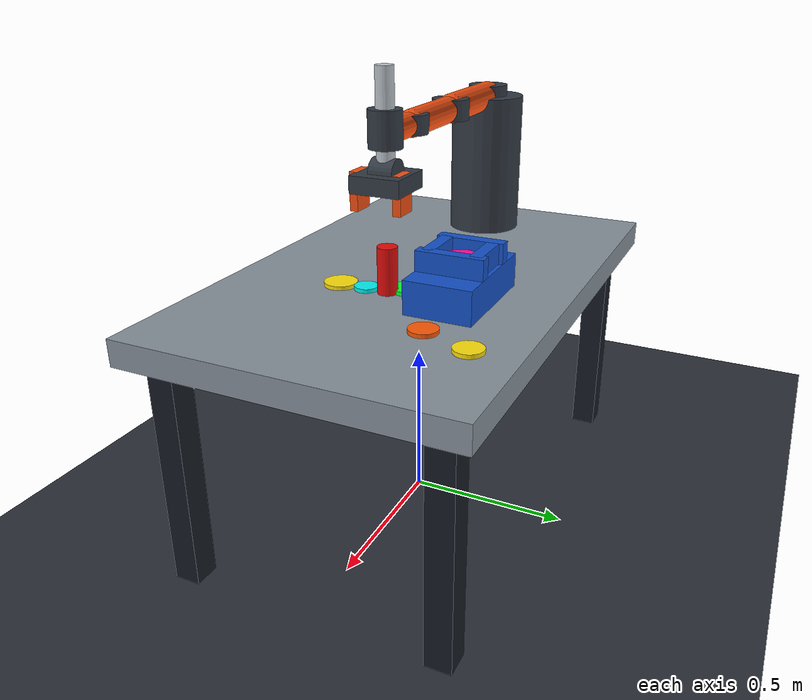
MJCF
<mujoco model="robot_peg_insertion_assembly">
  <compiler angle="radian" autolimits="true"/>
  <option timestep="0.002" gravity="0 0 -9.81" integrator="implicitfast" solver="Newton" cone="elliptic"/>
  <size nconmax="500" njmax="1200"/>
  <statistic center="0 0.08 0.9" extent="1.35"/>
  <visual>
    <global offwidth="640" offheight="480"/>
    <quality shadowsize="2048"/>
    <map znear="0.01" zfar="8"/>
    <headlight ambient="0.30 0.31 0.34" diffuse="0.72 0.74 0.76" specular="0.18 0.18 0.20"/>
  </visual>

  <asset>
    <texture name="ground_tex" type="2d" builtin="checker" rgb1="0.12 0.14 0.17" rgb2="0.22 0.24 0.27" width="512" height="512"/>
    <material name="ground_mat" texture="ground_tex" texrepeat="5 5" reflectance="0.08"/>
    <material name="bench_mat" rgba="0.53 0.57 0.61 1" specular="0.18" roughness="0.62"/>
    <material name="frame_mat" rgba="0.08 0.10 0.13 1" specular="0.20" roughness="0.48"/>
    <material name="arm_mat" rgba="0.95 0.31 0.07 1" specular="0.35" roughness="0.30"/>
    <material name="arm_dark_mat" rgba="0.20 0.23 0.27 1" specular="0.25" roughness="0.42"/>
    <material name="arm_steel_mat" rgba="0.74 0.77 0.80 1" specular="0.60" roughness="0.18"/>
    <material name="peg_mat" rgba="0.88 0.05 0.04 1" specular="0.34" roughness="0.28"/>
    <material name="fixture_mat" rgba="0.08 0.32 0.78 1" specular="0.24" roughness="0.42"/>
    <material name="socket_mat" rgba="0.03 0.12 0.25 1" specular="0.26" roughness="0.30"/>
    <material name="marker_yellow" rgba="1 0.88 0.04 1" emission="0.35"/>
    <material name="marker_cyan" rgba="0.02 0.95 0.95 1" emission="0.35"/>
    <material name="marker_green" rgba="0.05 1 0.18 1" emission="0.35"/>
    <material name="marker_magenta" rgba="1 0.05 0.65 1" emission="0.35"/>
    <material name="marker_orange" rgba="1 0.35 0.02 1" emission="0.35"/>
  </asset>

  <default>
    <geom friction="0.72 0.01 0.002" condim="6" solref="0.008 1" solimp="0.90 0.95 0.001"/>
    <default class="world_part">
      <geom contype="1" conaffinity="7"/>
    </default>
    <default class="robot_part">
      <geom contype="2" conaffinity="7"/>
    </default>
    <default class="payload_part">
      <geom contype="4" conaffinity="7"/>
    </default>
  </default>

  <worldbody>
    <light name="key_light" pos="-1.2 -1.1 2.8" dir="0.35 0.32 -1" directional="true" castshadow="true"/>
    <light name="fill_light" pos="1.4 0.3 2.0" dir="-0.7 -0.2 -1" directional="true" diffuse="0.42 0.44 0.48" specular="0.08 0.08 0.08"/>
    <camera name="assembly_camera" pos="1.4883 -1.7737 2.0586" quat="0.8258179558 0.4483825660 0.1631979076 0.3005731548" fovy="45"/>

    <geom name="ground_geom" class="world_part" type="plane" size="3 3 0.1" material="ground_mat"/>
    <body name="workbench" pos="0 0 0.74">
      <geom name="workbench_top_geom" class="world_part" type="box" size="0.80 0.50 0.04" material="bench_mat" friction="0.90 0.01 0.001"/>
      <geom name="workbench_leg_fl" class="world_part" type="box" pos="-0.70 -0.40 -0.38" size="0.04 0.04 0.38" material="frame_mat"/>
      <geom name="workbench_leg_fr" class="world_part" type="box" pos="0.70 -0.40 -0.38" size="0.04 0.04 0.38" material="frame_mat"/>
      <geom name="workbench_leg_bl" class="world_part" type="box" pos="-0.70 0.40 -0.38" size="0.04 0.04 0.38" material="frame_mat"/>
      <geom name="workbench_leg_br" class="world_part" type="box" pos="0.70 0.40 -0.38" size="0.04 0.04 0.38" material="frame_mat"/>
    </body>

    <body name="arm_base" pos="-0.55 0 1.235">
      <geom name="arm_base_geom" class="robot_part" type="cylinder" pos="0 0 -0.2275" size="0.12 0.2275" material="arm_dark_mat"/>
      <body name="arm_link1" pos="0 0 0">
        <joint name="arm_shoulder" type="hinge" axis="0 0 1" range="-3.05 3.05" damping="1.5" armature="0.015"/>
        <geom name="arm_link1_geom" class="robot_part" type="capsule" fromto="0 0 0 0.32 0 0" size="0.045" mass="0.65" material="arm_mat"/>
        <geom name="arm_shoulder_hub" class="robot_part" type="cylinder" size="0.065 0.035" mass="0.30" material="arm_dark_mat"/>
        <body name="arm_link2" pos="0.32 0 0">
          <joint name="arm_elbow" type="hinge" axis="0 0 1" range="-2.75 2.75" damping="1.2" armature="0.012"/>
          <geom name="arm_link2_geom" class="robot_part" type="capsule" fromto="0 0 0 0.28 0 0" size="0.040" mass="0.52" material="arm_mat"/>
          <geom name="arm_elbow_hub" class="robot_part" type="cylinder" size="0.058 0.032" mass="0.22" material="arm_dark_mat"/>
          <body name="arm_link3" pos="0.28 0 0">
            <joint name="arm_wrist" type="hinge" axis="0 0 1" range="-2.8 2.8" damping="1.0" armature="0.010"/>
            <geom name="arm_link3_geom" class="robot_part" type="capsule" fromto="0 0 0 0.16 0 0" size="0.035" mass="0.30" material="arm_mat"/>
            <geom name="arm_wrist_hub" class="robot_part" type="cylinder" size="0.050 0.028" mass="0.18" material="arm_dark_mat"/>
            <geom name="lift_sleeve" class="robot_part" type="cylinder" pos="0.16 0 0.012" size="0.048 0.052" mass="0.22" material="arm_dark_mat"/>
            <body name="arm_lift" pos="0.16 0 -0.075" gravcomp="1">
              <joint name="tool_z" type="slide" axis="0 0 1" range="-0.17 0.045" damping="3.0" armature="0.008"/>
              <geom name="lift_ram" class="robot_part" type="cylinder" pos="0 0 0.125" size="0.026 0.125" mass="0.20" material="arm_steel_mat"/>
              <body name="arm_tool" pos="0 0 -0.030" gravcomp="1">
                <joint name="tool_pitch" type="hinge" axis="0 1 0" range="-0.35 0.35" damping="2.5" armature="0.006"/>
                <geom name="tool_pitch_hub" class="robot_part" type="cylinder" zaxis="0 1 0" size="0.040 0.036" mass="0.16" material="arm_dark_mat"/>
                <geom name="tool_palm_geom" class="robot_part" type="box" pos="0 0 -0.025" size="0.075 0.075 0.025" mass="0.24" material="arm_dark_mat"/>
                <geom name="fixed_finger_geom" class="robot_part" type="box" pos="0 0.048 -0.055" size="0.035 0.012 0.055" mass="0.08" material="arm_mat"/>
                <body name="moving_finger" pos="0 0 0" gravcomp="1">
                  <joint name="gripper_slide" type="slide" axis="0 -1 0" range="-0.045 0" damping="2.0" armature="0.004"/>
                  <geom name="moving_finger_geom" class="robot_part" type="box" pos="0 -0.0835 -0.055" size="0.035 0.012 0.055" mass="0.08" material="arm_mat"/>
                </body>
                <!-- group 4: the tool centre is a kinematic reference the code
                     reads, not a marker for the viewer, so it is not drawn. -->
                <site name="tool_center_site" type="sphere" pos="0 0 -0.125" size="0.010" rgba="1 0.45 0.02 0.4" group="4"/>
              </body>
            </body>
          </body>
        </body>
      </body>
    </body>

    <body name="red_peg" pos="0.21 0 0.85">
      <freejoint name="peg_free"/>
      <geom name="red_peg_geom" class="payload_part" type="cylinder" size="0.030 0.070" mass="0.16" material="peg_mat" friction="0.65 0.01 0.002"/>
    </body>

    <body name="insertion_fixture" pos="0.17 0.21 0.83">
      <geom name="fixture_base_geom" class="world_part" type="box" size="0.17 0.10 0.05" material="fixture_mat" friction="0.82 0.01 0.001"/>
      <geom name="fixture_guide_left" class="world_part" type="box" pos="-0.075 0 0.080" size="0.018 0.10 0.030" material="fixture_mat"/>
      <geom name="fixture_guide_right" class="world_part" type="box" pos="0.075 0 0.080" size="0.018 0.10 0.030" material="fixture_mat"/>
      <geom name="fixture_guide_front" class="world_part" type="box" pos="0 -0.070 0.080" size="0.075 0.018 0.030" material="fixture_mat"/>
      <geom name="fixture_guide_back" class="world_part" type="box" pos="0 0.070 0.080" size="0.075 0.018 0.030" material="fixture_mat"/>
    </body>
    <!-- Socket floor bottom = fixture base top: 0.890 - 0.010 = 0.880, top = 0.900. -->
    <body name="socket_floor" pos="0.17 0.21 0.89">
      <geom name="socket_floor_geom" class="world_part" type="cylinder" size="0.055 0.010" material="socket_mat" friction="0.72 0.01 0.002"/>
    </body>

    <site name="peg_approach_marker" type="cylinder" pos="0.21 -0.155 0.786" size="0.050 0.006" material="marker_yellow" group="2"/>
    <site name="grasp_peg_marker" type="cylinder" pos="0.21 -0.070 0.786" size="0.036 0.006" material="marker_cyan" group="2"/>
    <site name="socket_approach_marker" type="cylinder" pos="0.17 0.045 0.786" size="0.048 0.006" material="marker_green" group="2"/>
    <site name="insertion_marker" type="cylinder" pos="0.17 0.21 0.906" size="0.050 0.006" material="marker_magenta" group="2"/>
    <site name="release_marker" type="cylinder" pos="0.42 0.21 0.786" size="0.042 0.006" material="marker_orange" group="2"/>
    <site name="inspection_marker" type="cylinder" pos="0.48 0.36 0.786" size="0.042 0.006" material="marker_yellow" group="2"/>
  </worldbody>

  <contact>
    <exclude name="base_shoulder_nest" body1="arm_base" body2="arm_link1"/>
    <exclude name="shoulder_elbow_nest" body1="arm_link1" body2="arm_link2"/>
    <exclude name="elbow_wrist_nest" body1="arm_link2" body2="arm_link3"/>
    <exclude name="lift_sleeve_nest" body1="arm_link3" body2="arm_lift"/>
    <exclude name="lift_pitch_nest" body1="arm_link3" body2="arm_tool"/>
    <exclude name="pitch_hub_nest" body1="arm_lift" body2="arm_tool"/>
    <exclude name="jaw_palm_nest" body1="arm_tool" body2="moving_finger"/>
  </contact>

  <equality>
    <weld name="peg_grasp" body1="arm_tool" body2="red_peg" relpose="0 0 -0.125 1 0 0 0"
          active="false" solref="0.01 1" solimp="0.96 0.99 0.001"/>
  </equality>

  <actuator>
    <position name="shoulder_motor" joint="arm_shoulder" kp="140" kv="14" ctrlrange="-3.05 3.05"/>
    <position name="elbow_motor" joint="arm_elbow" kp="140" kv="14" ctrlrange="-2.75 2.75"/>
    <position name="wrist_motor" joint="arm_wrist" kp="110" kv="11" ctrlrange="-2.8 2.8"/>
    <position name="tool_lift_motor" joint="tool_z" kp="420" kv="40" ctrlrange="-0.17 0.045"/>
    <position name="tool_pitch_motor" joint="tool_pitch" kp="90" kv="9" ctrlrange="-0.35 0.35"/>
    <position name="gripper_motor" joint="gripper_slide" kp="260" kv="16" ctrlrange="-0.045 0"/>
  </actuator>
</mujoco>
